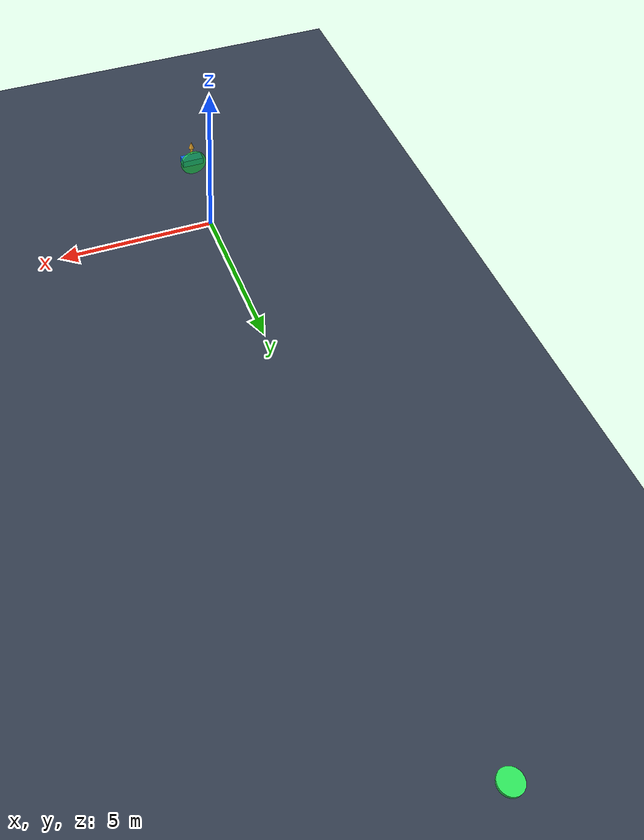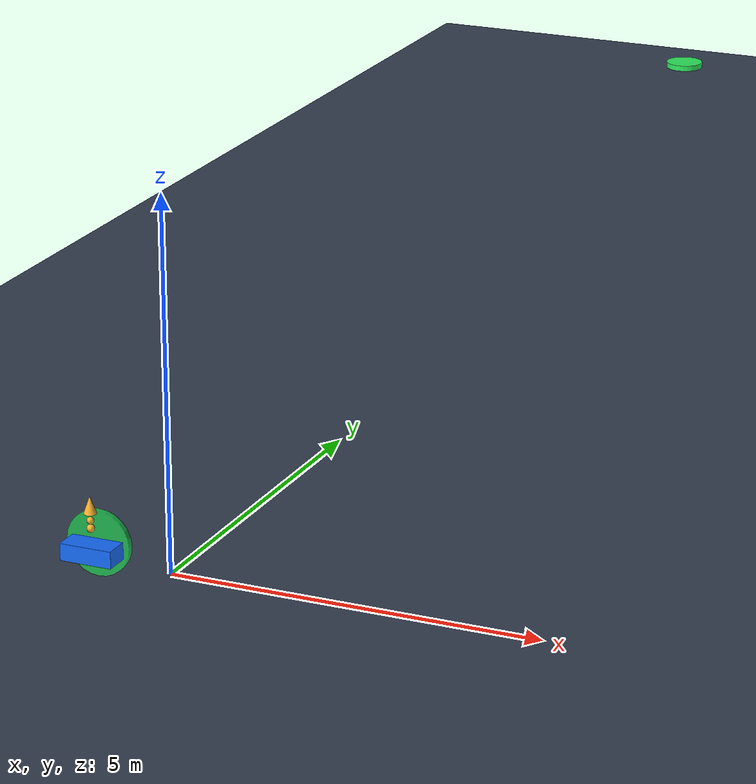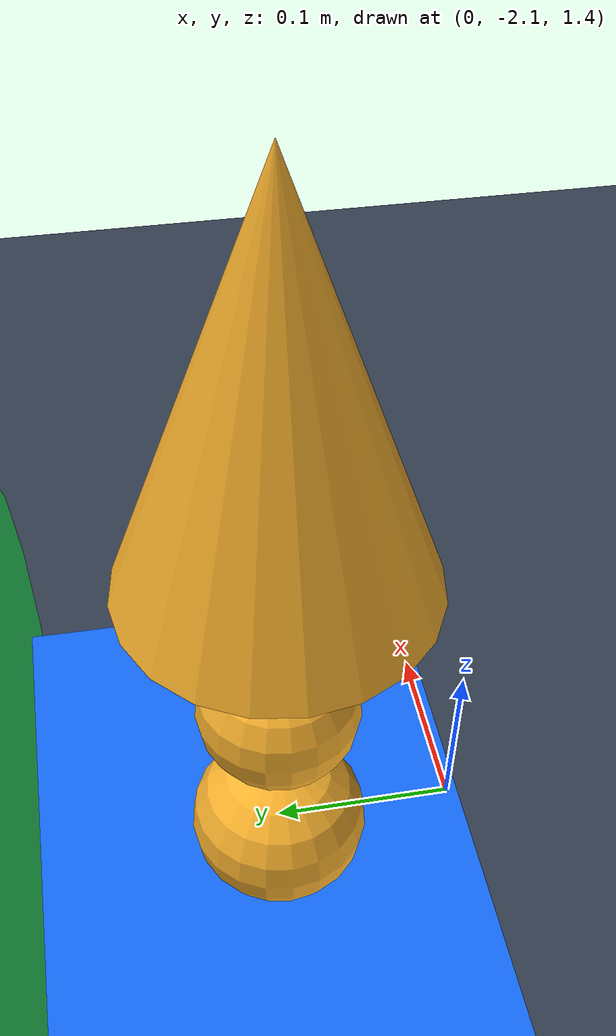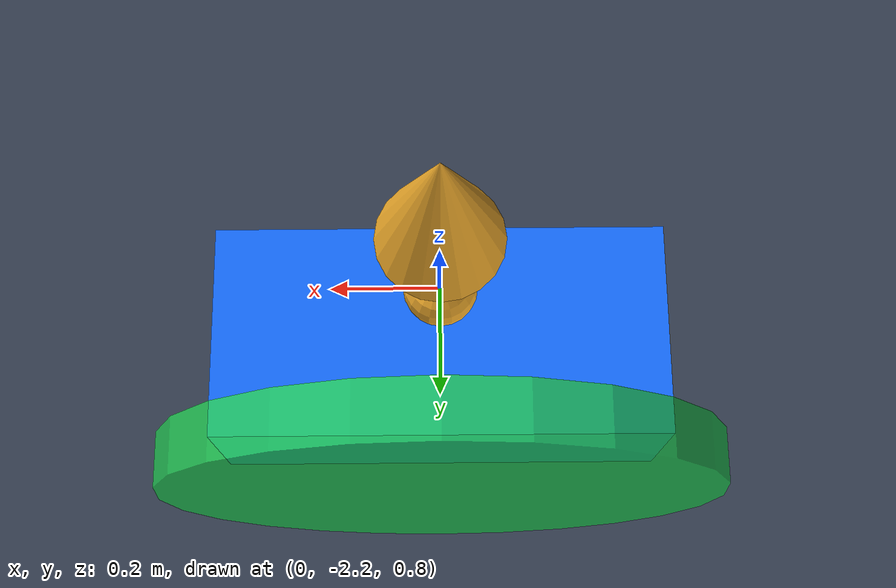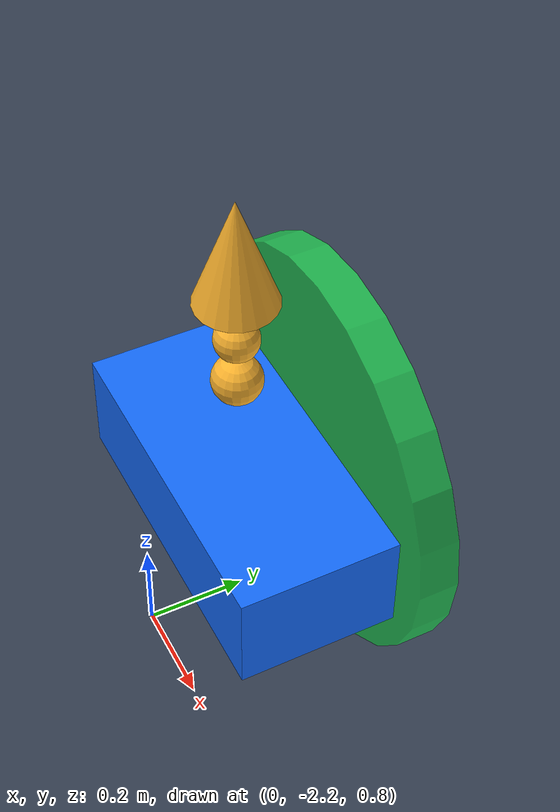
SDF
<sdf version="1.10">
 <world name="payload_demo_world">
  <gravity>0 0 -9.8</gravity>
  <physics name="1ms" type="ignored">
   <max_step_size>0.002</max_step_size>
   <real_time_factor>1.0</real_time_factor>
  </physics>
  <plugin filename="gz-sim-physics-system" name="gz::sim::systems::Physics"/>
  <plugin filename="gz-sim-user-commands-system" name="gz::sim::systems::UserCommands"/>
  <plugin filename="gz-sim-scene-broadcaster-system" name="gz::sim::systems::SceneBroadcaster"/>
  <plugin filename="gz-sim-sensors-system" name="gz::sim::systems::Sensors"/>
  <plugin filename="libsmooth_playback_system.so" name="rl_enhanced_gz_scene::SmoothPlaybackSystem">
   <enabled>false</enabled>
   <csv_path>/tmp/rl_enhanced_playback_samples.csv</csv_path>
   <payload_name>trajectory_payload</payload_name>
   <drone_front_name>world_drone_front</drone_front_name>
   <drone_rear_left_name>world_drone_rear_left</drone_rear_left_name>
   <drone_rear_right_name>world_drone_rear_right</drone_rear_right_name>
   <arrow_front_head_name>arrow_front_head</arrow_front_head_name>
   <arrow_rear_left_head_name>arrow_rear_left_head</arrow_rear_left_head_name>
   <arrow_rear_right_head_name>arrow_rear_right_head</arrow_rear_right_head_name>
   <goal_marker_name>goal_cross_marker</goal_marker_name>
   <goal_marker_x>0.0</goal_marker_x>
   <goal_marker_y>19.0</goal_marker_y>
   <goal_marker_z>2.05</goal_marker_z>
   <goal_marker_yaw_rate>0.30</goal_marker_yaw_rate>
   <speed>1.0</speed>
   <z_offset>1.10</z_offset>
   <drone_z_rel>0.40</drone_z_rel>
   <drone_front_x>0.20</drone_front_x>
   <drone_front_y>0.00</drone_front_y>
   <drone_rear_left_x>-0.17</drone_rear_left_x>
   <drone_rear_left_y>0.13</drone_rear_left_y>
   <drone_rear_right_x>-0.17</drone_rear_right_x>
   <drone_rear_right_y>-0.13</drone_rear_right_y>
   <attach_front_x>-0.40</attach_front_x>
   <attach_front_y>0.00</attach_front_y>
   <attach_front_z>-0.10</attach_front_z>
   <attach_rear_left_x>0.40</attach_rear_left_x>
   <attach_rear_left_y>0.00</attach_rear_left_y>
   <attach_rear_left_z>-0.10</attach_rear_left_z>
   <attach_rear_right_x>0.00</attach_rear_right_x>
   <attach_rear_right_y>0.00</attach_rear_right_y>
   <attach_rear_right_z>0.10</attach_rear_right_z>
  </plugin>
  <scene><ambient>0.18 0.22 0.30 1</ambient><background>0.12 0.16 0.24 1</background></scene>
  <light name="sun" type="directional">
   <pose>0 0 25 0 0 0</pose>
   <diffuse>0.95 0.95 0.95 1</diffuse>
   <specular>0.25 0.25 0.25 1</specular>
   <direction>-0.20 0.10 -0.97</direction>
  </light>
  <model name="ground_plane">
   <static>true</static>
   <link name="ground_link">
    <collision name="collision">
     <geometry><plane><normal>0 0 1</normal><size>120 120</size></plane></geometry>
    </collision>
    <visual name="visual">
     <geometry><plane><normal>0 0 1</normal><size>120 120</size></plane></geometry>
     <material>
      <ambient>0.20 0.24 0.31 1</ambient>
      <diffuse>0.20 0.24 0.31 1</diffuse>
      <specular>0.03 0.04 0.06 1</specular>
     </material>
    </visual>
   </link>
  </model>
  <model name="goal_cross_marker">
   <static>false</static>
   <pose>0.000000 19.000000 2.050000 0 0 0</pose>
   <link name="link">
    <gravity>false</gravity>
    <inertial>
     <mass>0.010</mass>
     <inertia><ixx>0.0001</ixx><iyy>0.0001</iyy><izz>0.0001</izz><ixy>0</ixy><ixz>0</ixz><iyz>0</iyz></inertia>
    </inertial>
    <visual name="base_ring">
     <pose>0 0 -0.210000 0 0 0</pose>
     <geometry><cylinder><radius>0.300000</radius><length>0.090000</length></cylinder></geometry>
     <material>
      <ambient>0.12 0.78 0.30 1</ambient>
      <diffuse>0.18 0.92 0.36 1</diffuse>
      <specular>0.05 0.10 0.05 1</specular>
      <emissive>0.10 0.45 0.15 1</emissive>
     </material>
    </visual>
   </link>
  </model>
  <model name="safe_start_ring">
   <static>true</static>
   <pose>0.000000 -1.800000 1.140000 1.570796 0 0</pose>
   <link name="link">
    <visual name="visual">
     <geometry><cylinder><radius>0.420000</radius><length>0.080000</length></cylinder></geometry>
     <material>
      <ambient>0.15 0.85 0.35 1</ambient>
      <diffuse>0.15 0.85 0.35 1</diffuse>
      <emissive>0.15 0.85 0.35 1</emissive>
     </material>
     <transparency>0.18</transparency>
    </visual>
   </link>
  </model>
  <model name="trajectory_payload">
   <static>false</static>
   <pose>0.000000 -2.000000 1.100000 0 0 0</pose>
   <link name="payload_link">
    <gravity>false</gravity>
    <inertial>
     <mass>2.0</mass>
     <inertia><ixx>0.05</ixx><iyy>0.12</iyy><izz>0.13</izz><ixy>0.0</ixy><ixz>0.0</ixz><iyz>0.0</iyz></inertia>
    </inertial>
    <collision name="collision"><geometry><box><size>0.56 0.26 0.18</size></box></geometry></collision>
    <visual name="visual">
     <geometry><box><size>0.68 0.32 0.22</size></box></geometry>
     <material>
      <ambient>0.08 0.42 0.98 1</ambient>
      <diffuse>0.08 0.42 0.98 1</diffuse>
      <specular>0.18 0.24 0.35 1</specular>
      <emissive>0.02 0.10 0.30 1</emissive>
     </material>
    </visual>
   </link>
  </model>
  <model name="attach_front_marker">
   <static>false</static>
   <pose>0 -2 1.0 0 0 0</pose>
   <link name="link">
    <gravity>false</gravity>
    <visual name="visual">
     <geometry><sphere><radius>0.055</radius></sphere></geometry>
     <material>
      <ambient>1.00 0.78 0.24 1</ambient>
      <diffuse>1.00 0.78 0.24 1</diffuse>
      <emissive>0.55 0.32 0.04 1</emissive>
     </material>
    </visual>
   </link>
  </model>
  <model name="attach_rear_left_marker">
   <static>false</static>
   <pose>0 -2 1.0 0 0 0</pose>
   <link name="link">
    <gravity>false</gravity>
    <visual name="visual">
     <geometry><sphere><radius>0.055</radius></sphere></geometry>
     <material>
      <ambient>0.30 1.00 0.64 1</ambient>
      <diffuse>0.30 1.00 0.64 1</diffuse>
      <emissive>0.08 0.42 0.20 1</emissive>
     </material>
    </visual>
   </link>
  </model>
  <model name="attach_rear_right_marker">
   <static>false</static>
   <pose>0 -2 1.0 0 0 0</pose>
   <link name="link">
    <gravity>false</gravity>
    <visual name="visual">
     <geometry><sphere><radius>0.055</radius></sphere></geometry>
     <material>
      <ambient>1.00 0.42 0.50 1</ambient>
      <diffuse>1.00 0.42 0.50 1</diffuse>
      <emissive>0.42 0.10 0.14 1</emissive>
     </material>
    </visual>
   </link>
  </model>
  <model name="arrow_front_seg_0">
   <static>false</static>
   <pose>0 -2 1.4 0 0 0</pose>
   <link name="link">
    <gravity>false</gravity>
    <visual name="visual">
     <geometry><sphere><radius>0.050</radius></sphere></geometry>
     <material>
      <ambient>0.98 0.70 0.18 1</ambient>
      <diffuse>0.98 0.70 0.18 1</diffuse>
      <emissive>0.50 0.28 0.04 1</emissive>
     </material>
    </visual>
   </link>
  </model>
  <model name="arrow_front_seg_1">
   <static>false</static>
   <pose>0 -2 1.5 0 0 0</pose>
   <link name="link">
    <gravity>false</gravity>
    <visual name="visual">
     <geometry><sphere><radius>0.044</radius></sphere></geometry>
     <material>
      <ambient>0.98 0.70 0.18 1</ambient>
      <diffuse>0.98 0.70 0.18 1</diffuse>
      <emissive>0.50 0.28 0.04 1</emissive>
     </material>
    </visual>
   </link>
  </model>
  <model name="arrow_front_seg_2">
   <static>false</static>
   <pose>0 -2 1.6 0 0 0</pose>
   <link name="link">
    <gravity>false</gravity>
    <visual name="visual">
     <geometry><sphere><radius>0.038</radius></sphere></geometry>
     <material>
      <ambient>0.98 0.70 0.18 1</ambient>
      <diffuse>0.98 0.70 0.18 1</diffuse>
      <emissive>0.50 0.28 0.04 1</emissive>
     </material>
    </visual>
   </link>
  </model>
  <model name="arrow_front_head">
   <static>false</static>
   <pose>0 -2 1.7 0 0 0</pose>
   <link name="link">
    <gravity>false</gravity>
    <visual name="visual">
     <geometry><cone><radius>0.080</radius><length>0.22</length></cone></geometry>
     <material>
      <ambient>0.98 0.70 0.18 1</ambient>
      <diffuse>0.98 0.70 0.18 1</diffuse>
      <emissive>0.50 0.28 0.04 1</emissive>
     </material>
    </visual>
   </link>
  </model>
  <model name="arrow_rear_left_seg_0">
   <static>false</static>
   <pose>0 -2 1.4 0 0 0</pose>
   <link name="link">
    <gravity>false</gravity>
    <visual name="visual">
     <geometry><sphere><radius>0.050</radius></sphere></geometry>
     <material>
      <ambient>0.20 0.95 0.58 1</ambient>
      <diffuse>0.20 0.95 0.58 1</diffuse>
      <emissive>0.08 0.42 0.20 1</emissive>
     </material>
    </visual>
   </link>
  </model>
  <model name="arrow_rear_left_seg_1">
   <static>false</static>
   <pose>0 -2 1.5 0 0 0</pose>
   <link name="link">
    <gravity>false</gravity>
    <visual name="visual">
     <geometry><sphere><radius>0.044</radius></sphere></geometry>
     <material>
      <ambient>0.20 0.95 0.58 1</ambient>
      <diffuse>0.20 0.95 0.58 1</diffuse>
      <emissive>0.08 0.42 0.20 1</emissive>
     </material>
    </visual>
   </link>
  </model>
  <model name="arrow_rear_left_seg_2">
   <static>false</static>
   <pose>0 -2 1.6 0 0 0</pose>
   <link name="link">
    <gravity>false</gravity>
    <visual name="visual">
     <geometry><sphere><radius>0.038</radius></sphere></geometry>
     <material>
      <ambient>0.20 0.95 0.58 1</ambient>
      <diffuse>0.20 0.95 0.58 1</diffuse>
      <emissive>0.08 0.42 0.20 1</emissive>
     </material>
    </visual>
   </link>
  </model>
  <model name="arrow_rear_left_head">
   <static>false</static>
   <pose>0 -2 1.7 0 0 0</pose>
   <link name="link">
    <gravity>false</gravity>
    <visual name="visual">
     <geometry><cone><radius>0.080</radius><length>0.22</length></cone></geometry>
     <material>
      <ambient>0.20 0.95 0.58 1</ambient>
      <diffuse>0.20 0.95 0.58 1</diffuse>
      <emissive>0.08 0.42 0.20 1</emissive>
     </material>
    </visual>
   </link>
  </model>
  <model name="arrow_rear_right_seg_0">
   <static>false</static>
   <pose>0 -2 1.4 0 0 0</pose>
   <link name="link">
    <gravity>false</gravity>
    <visual name="visual">
     <geometry><sphere><radius>0.050</radius></sphere></geometry>
     <material>
      <ambient>0.95 0.30 0.38 1</ambient>
      <diffuse>0.95 0.30 0.38 1</diffuse>
      <emissive>0.42 0.10 0.14 1</emissive>
     </material>
    </visual>
   </link>
  </model>
  <model name="arrow_rear_right_seg_1">
   <static>false</static>
   <pose>0 -2 1.5 0 0 0</pose>
   <link name="link">
    <gravity>false</gravity>
    <visual name="visual">
     <geometry><sphere><radius>0.044</radius></sphere></geometry>
     <material>
      <ambient>0.95 0.30 0.38 1</ambient>
      <diffuse>0.95 0.30 0.38 1</diffuse>
      <emissive>0.42 0.10 0.14 1</emissive>
     </material>
    </visual>
   </link>
  </model>
  <model name="arrow_rear_right_seg_2">
   <static>false</static>
   <pose>0 -2 1.6 0 0 0</pose>
   <link name="link">
    <gravity>false</gravity>
    <visual name="visual">
     <geometry><sphere><radius>0.038</radius></sphere></geometry>
     <material>
      <ambient>0.95 0.30 0.38 1</ambient>
      <diffuse>0.95 0.30 0.38 1</diffuse>
      <emissive>0.42 0.10 0.14 1</emissive>
     </material>
    </visual>
   </link>
  </model>
  <model name="arrow_rear_right_head">
   <static>false</static>
   <pose>0 -2 1.7 0 0 0</pose>
   <link name="link">
    <gravity>false</gravity>
    <visual name="visual">
     <geometry><cone><radius>0.080</radius><length>0.22</length></cone></geometry>
     <material>
      <ambient>0.95 0.30 0.38 1</ambient>
      <diffuse>0.95 0.30 0.38 1</diffuse>
      <emissive>0.42 0.10 0.14 1</emissive>
     </material>
    </visual>
   </link>
  </model>
 </world>
</sdf>
